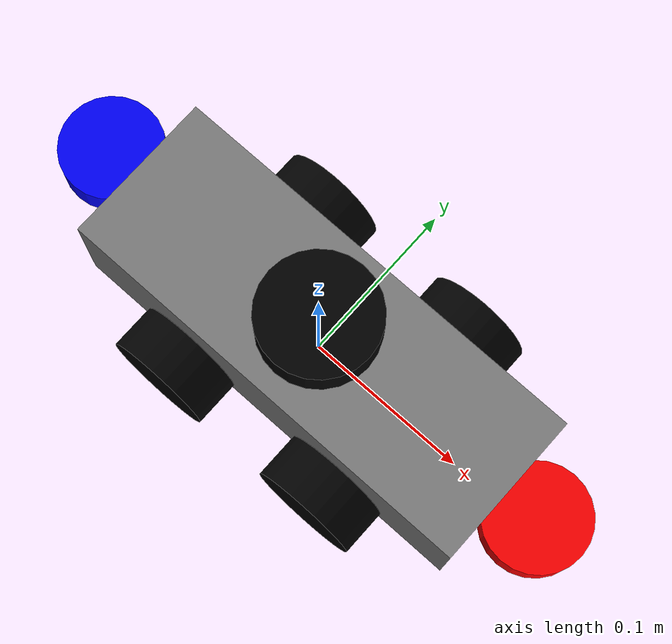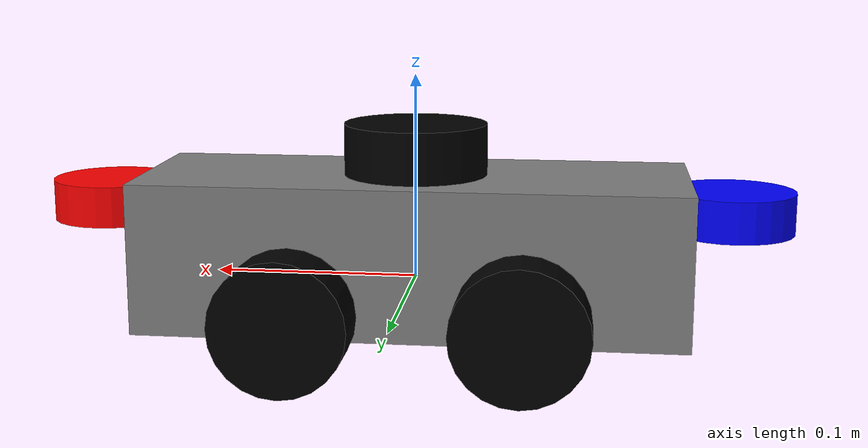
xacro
<?xml version="1.0"?>
<robot xmlns:xacro="http://www.ros.org/wiki/xacro" name="mi_robot">

  <!-- Reusable Properties -->
  <!-- Chassis-->
  <xacro:property name="chassis_xlength" value="0.265"/>
  <xacro:property name="chassis_ylength" value="0.094"/>
  <xacro:property name="chassis_zlength" value="0.073"/>
  <xacro:property name="chassis_mass" value="0.670"/>
  <xacro:property name="chassis_zOffset" value="0.015"/>

  <!-- Backwards-compatible aliases for older property names -->
  <xacro:property name="chassis_length" value="${chassis_xlength}"/>
  <xacro:property name="chassis_width" value="${chassis_ylength}"/>
  <xacro:property name="chassis_height" value="${chassis_zlength}"/>
  <!-- keep both spellings of zOffset (original had a typo) -->
  <xacro:property name="chassis_zOfffset" value="${chassis_zOffset}"/>

  <!-- Wheels-->
  <xacro:property name="wheel_radius" value="0.0325"/>
  <xacro:property name="wheel_width" value="0.028"/>
  <xacro:property name="wheel_xoffset" value="0.055"/>
  <xacro:property name="wheel_yoffset" value="${chassis_ylength/2 + wheel_width/2}"/>
  <xacro:property name="wheel_mass" value="0.032"/>
  <xacro:property name="wheel_Izz" value="${0.5*wheel_mass*wheel_radius*wheel_radius}"/>
  <xacro:property name="wheel_Ixx" value="${(1.0/12.0)*wheel_mass*(3.0*wheel_radius*wheel_radius + wheel_width*wheel_width)}"/>
  <xacro:property name="wheel_Iyy" value="${wheel_Ixx}"/>
  <xacro:property name="wheel_Ixz" value="0"/>

<!-- LiDAR-->
  <xacro:property name="lidar_length" value="0.04"/>
  <xacro:property name="lidar_radius" value="0.035"/>
  <xacro:property name="lidar_mass" value="0.05"/>
  <xacro:property name="lidar_Izz" value="${0.5*lidar_mass*lidar_radius*lidar_radius}"/>
  <xacro:property name="lidar_Ixx" value="${(1.0/12.0)*lidar_mass*(3.0*lidar_radius*lidar_radius + lidar_length*lidar_length)}"/>
  <xacro:property name="lidar_Iyy" value="${lidar_Ixx}"/>

  <!--IMU-->
  <xacro:property name="imu_mass" value="0.02"/>
  <xacro:property name="imu_xlength" value="0.02"/>
  <xacro:property name="imu_ylength" value="0.02"/>
  <xacro:property name="imu_zlength" value="0.02"/>

  <!-- Constants (avoid redefining common symbols) -->

  <!-- Chasis -->
  <link name="base_link">
    <visual>
      <geometry>
        <box size="${chassis_xlength} ${chassis_ylength} ${chassis_zlength}"/>
      </geometry>
      <origin xyz="0 0 ${chassis_zOffset}" rpy="0 0 0"/>
      <material name="gray"><color rgba="0.5 0.5 0.5 1"/></material>
    </visual>
    <collision>
      <geometry>
        <box size="${chassis_xlength} ${chassis_ylength} ${chassis_zlength}"/>
      </geometry>
      <origin xyz="0 0 ${chassis_zOffset}" rpy="0 0 0"/>
    </collision>
    <inertial>
      <origin xyz="0 0 ${chassis_zOffset}" rpy="0 0 0"/>
      <mass value="${chassis_mass}"/>
      <inertia
        ixx="${chassis_mass*(chassis_ylength*chassis_ylength + chassis_zlength*chassis_zlength)/12.0}"
        ixy="0"
        ixz="0"
        iyy="${chassis_mass*(chassis_xlength*chassis_xlength + chassis_zlength*chassis_zlength)/12.0}"
        iyz="0"
        izz="${chassis_mass*(chassis_xlength*chassis_xlength + chassis_ylength*chassis_ylength)/12.0}"/>
    </inertial>
  </link>

  <!-- Dummy root link to avoid KDL warning about inertia on root link -->
  <link name="robot_root">
    <!-- intentionally no inertial element here; KDL does not support inertia on the root link -->
  </link>

  <joint name="robot_root_joint" type="fixed">
    <parent link="robot_root"/>
    <child link="base_link"/>
    <origin xyz="0 0 0" rpy="0 0 0"/>
  </joint>

  <!-- Macro for a wheel -->
  <xacro:macro name="wheel_macro" params="wheel_name x y">
    <link name="${wheel_name}_link">
      <visual>
        <origin xyz="0 0 0" rpy="${pi/2} 0 0"/>
        <geometry>
          <cylinder radius="${wheel_radius}" length="${wheel_width}"/>
        </geometry>
        <material name="black"><color rgba="0 0 0 1"/></material>
      </visual>
      <collision>
        <origin xyz="0 0 0" rpy="${pi/2} 0 0"/>
        <geometry>
          <cylinder radius="${wheel_radius}" length="${wheel_width}"/>
        </geometry>
      </collision>
      <inertial>
        <origin xyz="0 0 0" rpy="${pi/2} 0 0"/>
        <mass value="${wheel_mass}"/>
        <inertia
          ixx="${wheel_mass*(3.0*wheel_radius*wheel_radius + wheel_width*wheel_width)/12.0}"
          ixy="0"
          ixz="0"
          iyy="${wheel_mass*(3.0*wheel_radius*wheel_radius + wheel_width*wheel_width)/12.0}"
          iyz="0"
          izz="${0.5*wheel_mass*wheel_radius*wheel_radius}"/>
      </inertial>
    </link>

    <joint name="${wheel_name}_joint" type="continuous">
      <parent link="base_link"/>
      <child link="${wheel_name}_link"/>
      <origin xyz="${x} ${y} ${-chassis_height/8}" rpy="0 0 0"/>
      <axis xyz="0 1 0"/>
      <limit effort="1.0" velocity="30"/>
    </joint>
  </xacro:macro>

  <!-- Ruedas (invocar macro) -->
  <xacro:wheel_macro wheel_name="wheel_fl" x="${wheel_xoffset}" y="${wheel_yoffset}"/>
  <xacro:wheel_macro wheel_name="wheel_fr" x="${wheel_xoffset}" y="${-wheel_yoffset}"/>
  <xacro:wheel_macro wheel_name="wheel_rl" x="${-wheel_xoffset}" y="${wheel_yoffset}"/>
  <xacro:wheel_macro wheel_name="wheel_rr" x="${-wheel_xoffset}" y="${-wheel_yoffset}"/>

  <!-- LiDAR -->
  <link name="lidar_link">
    <visual>
      <geometry>
        <cylinder radius="${lidar_radius}" length="${lidar_length}"/>
      </geometry>
      <material name="black"><color rgba="0 0 0 1"/></material>
     </visual>
    <collision>
      <geometry>
        <cylinder radius="${lidar_radius}" length="${lidar_length}"/>
      </geometry>
    </collision>
    <inertial>
      <origin xyz="0 0 0" rpy="0 0 0"/>
      <mass value="${lidar_mass}"/>
      <inertia
        ixx="${lidar_Ixx}"
        ixy="0"
        ixz="0"
        iyy="${lidar_Iyy}"
        iyz="0"
        izz="${lidar_Izz}"/>
    </inertial>
  </link>
  <joint name="lidar_joint" type="fixed">
    <parent link="base_link"/>
    <child link="lidar_link"/>
    <origin xyz="0 0 ${chassis_height/2.0 + lidar_length/2.0}" rpy="0 0 0"/>
  </joint>
  <!-- imu -->
  <link name="imu_link">
    <visual>
      <geometry>
        <box size="${imu_xlength} ${imu_ylength} ${imu_zlength}"/>
      </geometry>
      <material name="yellow"><color rgba="1 1 0 1"/></material>
    </visual>
    <inertial>
      <origin xyz="0 0 0" rpy="0 0 0"/>
      <mass value="${imu_mass}"/>
      <inertia
        ixx="${imu_mass*(imu_ylength*imu_ylength + imu_zlength*imu_zlength)/12.0}"
        ixy="0"
        ixz="0"
        iyy="${imu_mass*(imu_xlength*imu_xlength + imu_zlength*imu_zlength)/12.0}"
        iyz="0"
        izz="${imu_mass*(imu_xlength*imu_xlength + imu_ylength*imu_ylength)/12.0}"/>
    </inertial>
  </link>
  <joint name="imu_joint" type="fixed">
    <parent link="base_link"/>
    <child link="imu_link"/>
    <origin xyz="0 0 ${chassis_zlength/2.0}" rpy="0 0 0"/>
  </joint>
  <!-- Sensor delantero -->
  <link name="sensor_front_link">
    <visual>
      <geometry>
        <cylinder radius="0.03" length="0.02"/>
      </geometry>
      <material name="red"><color rgba="1 0 0 1"/></material>
    </visual>
  </link>
  <joint name="sensor_front_joint" type="fixed">
    <parent link="base_link"/>
    <child link="sensor_front_link"/>
    <origin xyz="${(chassis_length/2.0) + 0.02} 0 ${chassis_height/2.0}" rpy="0 0 0"/>
  </joint>

  <!-- Sensor trasero -->
  <link name="sensor_back_link">
    <visual>
      <geometry>
        <cylinder radius="0.03" length="0.02"/>
      </geometry>
      <material name="blue"><color rgba="0 0 1 1"/></material>
    </visual>
  </link>
  <joint name="sensor_back_joint" type="fixed">
    <parent link="base_link"/>
    <child link="sensor_back_link"/>
    <origin xyz="${-(chassis_length/2.0 + 0.02)} 0 ${chassis_height/2.0}" rpy="0 0 0"/>
  </joint>

  <!-- Incluir las definiciones de Gazebo -->
  <xacro:include filename="$(find mi_robot_description)/xacro/mi_robot.gazebo.xacro" />

</robot>
